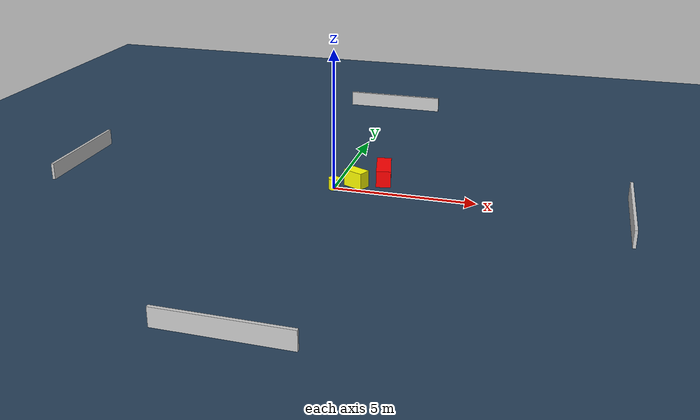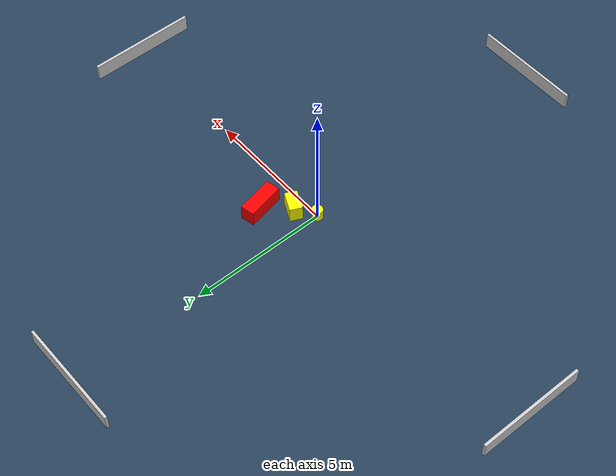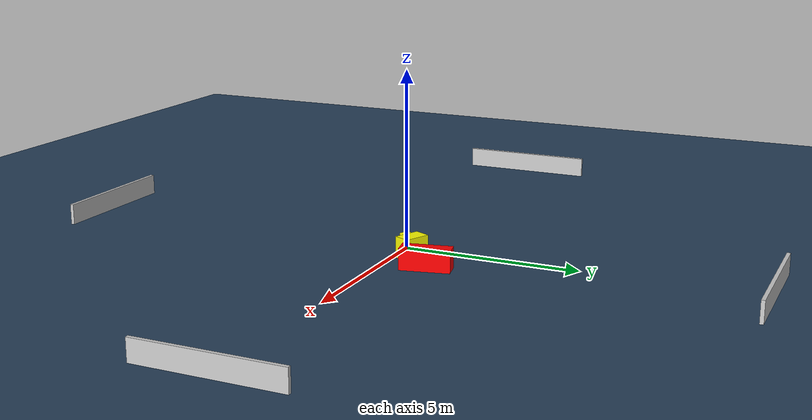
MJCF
<?xml version="1.0" ?>
<mujoco model="generated_environment">
  <option timestep="0.01" integrator="RK4" cone="elliptic"/>
  <default>
    <geom density="1"/>
  </default>
  <asset>
    <texture builtin="gradient" height="3072" name="skybox" rgb1="0.3 0.5 0.7" rgb2="0 0 0" type="skybox" width="512"/>
    <texture builtin="checker" height="300" name="groundplane" rgb1="0.2 0.3 0.4" rgb2="0.1 0.2 0.3" type="2d" width="300"/>
    <material name="groundplane" reflectance="0.2" texrepeat="5 5" texture="groundplane"/>
  </asset>
  <worldbody>
    <light dir="0 0 -1" directional="true" pos="0 0 1.5"/>
    <geom condim="3" friction="0.5 0.005 0.001" material="groundplane" name="floor" pos="0 0 0" size="0 0 0.05" type="plane"/>
    <body name="walls">
      <geom name="wall_1" condim="4" pos="-10.0 0.0 0.3" rgba="0.800000011920929 0.800000011920929 0.800000011920929 1.0" size="0.05 2.0 0.3" type="box"/>
      <geom name="wall_2" condim="4" pos="10.0 0.0 0.3" rgba="0.800000011920929 0.800000011920929 0.800000011920929 1.0" size="0.05 2.0 0.3" type="box"/>
      <geom name="wall_3" condim="4" pos="0.0 -10.0 0.3" rgba="0.800000011920929 0.800000011920929 0.800000011920929 1.0" size="2.0 0.05 0.3" type="box"/>
      <geom name="wall_4" condim="4" pos="0.0 10.0 0.3" rgba="0.800000011920929 0.800000011920929 0.800000011920929 1.0" size="2.0 0.05 0.3" type="box"/>
    </body>
    <body name="robot">
      <joint name="joint_x" type="slide" pos="0 0 0" axis="1 0 0"/>
      <joint name="joint_y" type="slide" pos="0 0 0" axis="0 1 0"/>
      <geom name="robot" type="cylinder" pos="0.0 0.0 0.2" size="0.2 0.2 0.0" mass="5.0" friction="1.0 0.005 0.0001" condim="4" rgba="1.0 1.0 0.0 1.0"/>
    </body>
    <body name="obstacle_1_movable">
      <geom name="obstacle_1_movable" condim="4" pos="0.6885361583615013 0.4711615842273599 0.3" euler="0 0 154.66926776218415" friction="0.0 0.005 0.001" rgba="1.0 1.0 0.0 1.0" size="0.3780250920761162 0.22972291966282204 0.3" type="box" mass="0.1"/>
      <joint type="free"/>
    </body>
    <body name="obstacle_2_static">
      <geom name="obstacle_2_static" condim="4" pos="1.5029797072783988 1.2495379636126165 0.3" euler="0 0 11.825596877828254" friction="0.0 0.005 0.001" rgba="1.0 0.0 0.0 1.0" size="0.26064209168305424 0.6939777159909559 0.3" type="box"/>
    </body>
  </worldbody>
  <actuator>
    <motor name="actuator_x" joint="joint_x" gear="1" ctrlrange="-1 1"/>
    <motor name="actuator_y" joint="joint_y" gear="1" ctrlrange="-1 1"/>
  </actuator>
</mujoco>
